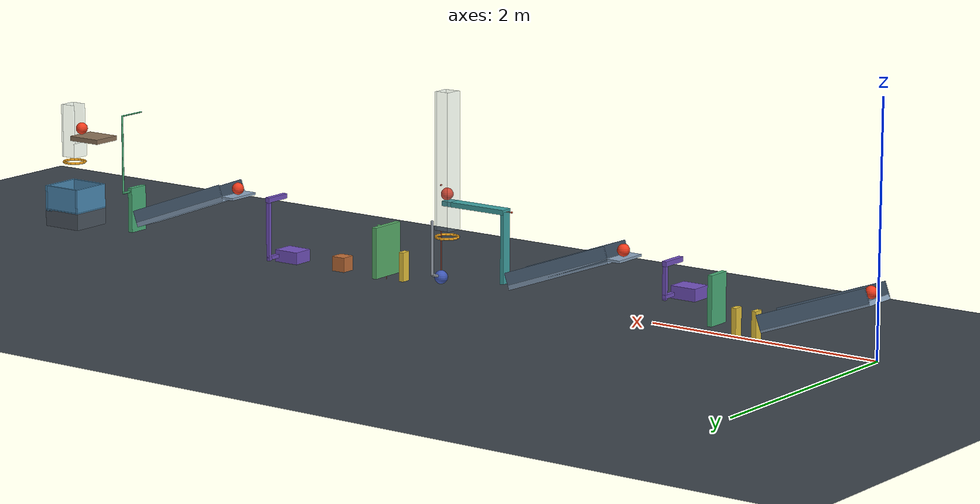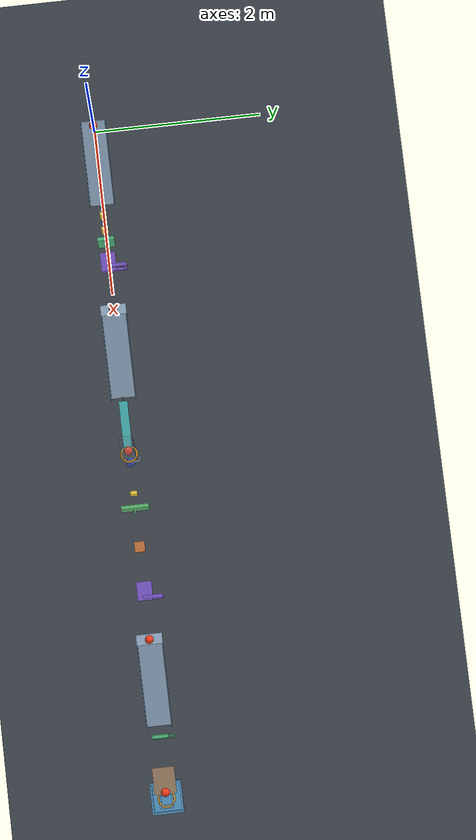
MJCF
<mujoco model="passive_chain_reaction_revised">
  <compiler angle="degree" autolimits="true"/>
  <option timestep="0.002" gravity="0 0 -9.81" integrator="implicitfast" solver="Newton" iterations="100" cone="elliptic" o_solref="0.006 0.6901" o_solimp="0.95 0.99 0.001" o_friction="0.70 0.005 0.0001">
    <flag override="enable"/>
  </option>
  <size njmax="4000" nconmax="1000"/>
  <visual>
    <global azimuth="135" elevation="-25"/>
    <headlight ambient="0.35 0.35 0.35" diffuse="0.65 0.65 0.65" specular="0.2 0.2 0.2"/>
  </visual>
  <statistic center="4 0 0.55" extent="5"/>

  <!-- Unvalidated revision: cart1 now clears ramp2's release deck. -->
  <!-- Contact damping approximates restitution 0.05; MuJoCo has no direct restitution attribute. -->
  <!-- The start keyframe uses reference positions and zero generalized velocities. -->
  <!-- Auxiliary strike arms, passive spring assists, and ball-only guides are explicit. -->

  <worldbody>
    <light name="main_light" pos="3 -4 7" dir="0 0 -1" directional="true"/>
    <camera name="overview" pos="4 -8 5" xyaxes="1 0 0 0 0.49 0.872"/>
    <geom name="floor" type="plane" size="12 4 0.1" rgba="0.23 0.26 0.29 1"/>

    <site name="lever_spring_anchor" pos="3.344186 0 0.70" size="0.008" rgba="0.8 0.3 0.2 1"/>
    <site name="pendulum_spring_anchor" pos="4.039186 0 0.833830" size="0.008" rgba="0.8 0.3 0.2 1"/>
    <site name="door_spring_anchor" pos="4.594186 0 -0.28" size="0.008" rgba="0.8 0.3 0.2 1"/>

    <body name="ramp1" pos="0 0 0.492020">
      <geom name="ramp1_surface" type="box" pos="0.463006 0 -0.189804" quat="0.984807753 0 0.173648178 0" size="0.50 0.15 0.02" rgba="0.55 0.65 0.75 1"/>
      <geom name="ramp1_rail_left" type="box" pos="0.483527 0.145 -0.133422" quat="0.984807753 0 0.173648178 0" size="0.50 0.005 0.06" rgba="0.35 0.45 0.55 1"/>
      <geom name="ramp1_rail_right" type="box" pos="0.483527 -0.145 -0.133422" quat="0.984807753 0 0.173648178 0" size="0.50 0.005 0.06" rgba="0.35 0.45 0.55 1"/>
    </body>

    <body name="ball1" pos="0.064086 0 0.521904">
      <freejoint name="ball1_free"/>
      <geom name="ball1_sphere" type="sphere" size="0.05" mass="0.20" rgba="0.95 0.24 0.12 1"/>
    </body>

    <body name="domino1" pos="1.059693 0 0.12">
      <freejoint name="domino1_free"/>
      <geom name="domino1_box" type="box" size="0.02 0.04 0.12" mass="0.25" rgba="0.92 0.78 0.24 1"/>
    </body>

    <body name="domino2" pos="1.239693 0 0.12">
      <freejoint name="domino2_free"/>
      <geom name="domino2_box" type="box" size="0.02 0.04 0.12" mass="0.25" rgba="0.92 0.78 0.24 1"/>
    </body>

    <body name="flap1" pos="1.419693 0 0.08">
      <joint name="flap1_hinge" type="hinge" axis="0 1 0" range="0 65" damping="0.04" solreflimit="0.004 1"/>
      <geom name="flap1_panel" type="box" pos="0 0 0.20" size="0.02 0.10 0.20" mass="0.30" rgba="0.30 0.70 0.48 1"/>
    </body>

    <!-- Main cart clears the deck; the side-mounted push bar contacts ball2 above it. -->
    <body name="cart1" pos="1.669693 0 0.30">
      <joint name="cart1_slide" type="slide" axis="1 0 0" range="0 0.85" damping="0.20" solreflimit="0.004 1"/>
      <geom name="cart1_box" type="box" size="0.11 0.09 0.05" mass="0.50" rgba="0.45 0.32 0.75 1"/>
      <geom name="cart1_arm_root" type="box" pos="0.09 0.145 -0.015" size="0.015 0.07 0.015" mass="0" rgba="0.45 0.32 0.75 1"/>
      <geom name="cart1_side_mast" type="box" pos="0.09 0.20 0.09" size="0.015 0.015 0.132" mass="0" rgba="0.45 0.32 0.75 1"/>
      <geom name="cart1_push_bar" type="box" pos="0.09 0.10 0.242020" size="0.02 0.115 0.02" mass="0" rgba="0.45 0.32 0.75 1"/>
    </body>

    <body name="ramp2" pos="2.334493 0 0.492020">
      <geom name="ramp2_surface" type="box" pos="0.463006 0 -0.189804" quat="0.984807753 0 0.173648178 0" size="0.50 0.15 0.02" rgba="0.55 0.65 0.75 1"/>
      <geom name="ramp2_rail_left" type="box" pos="0.483527 0.145 -0.133422" quat="0.984807753 0 0.173648178 0" size="0.50 0.005 0.06" rgba="0.35 0.45 0.55 1"/>
      <geom name="ramp2_rail_right" type="box" pos="0.483527 -0.145 -0.133422" quat="0.984807753 0 0.173648178 0" size="0.50 0.005 0.06" rgba="0.35 0.45 0.55 1"/>
      <geom name="ramp2_release_deck" type="box" pos="-0.06 0 -0.01" size="0.06 0.15 0.01" rgba="0.55 0.65 0.75 1"/>
    </body>

    <body name="ball2" pos="2.279493 0 0.542020">
      <freejoint name="ball2_free"/>
      <geom name="ball2_sphere" type="sphere" size="0.05" mass="0.20" rgba="0.95 0.24 0.12 1"/>
    </body>

    <!-- Hanging tab transfers the low ramp impact to the elevated launching lever. -->
    <body name="lever1" pos="3.694186 0 0.70">
      <joint name="lever1_hinge" type="hinge" axis="0 -1 0" range="0 45" damping="0.04" solreflimit="0.004 1"/>
      <geom name="lever1_panel" type="box" size="0.30 0.05 0.02" mass="0.48" rgba="0.25 0.65 0.65 1"/>
      <geom name="lever1_strike_tab" type="box" pos="-0.285 0 -0.29" size="0.015 0.045 0.29" mass="0.02" rgba="0.25 0.65 0.65 1"/>
      <site name="lever1_spring_attachment" pos="0.28 0 0" size="0.008" rgba="0.8 0.3 0.2 1"/>
    </body>

    <body name="ball3" pos="3.979186 0 0.77">
      <freejoint name="ball3_free"/>
      <geom name="ball3_sphere" type="sphere" size="0.05" mass="0.20" contype="2" conaffinity="1" rgba="0.95 0.24 0.12 1"/>
    </body>

    <!-- These idealized rails collide only with ball3, providing lever clearance. -->
    <body name="ball3_guide" pos="3.979186 0 1.04">
      <geom name="ball3_guide_xminus" type="box" pos="-0.061 0 0" size="0.008 0.075 0.56" contype="4" conaffinity="2" rgba="0.55 0.65 0.75 0.25"/>
      <geom name="ball3_guide_xplus" type="box" pos="0.061 0 0" size="0.008 0.075 0.56" contype="4" conaffinity="2" rgba="0.55 0.65 0.75 0.25"/>
      <geom name="ball3_guide_yminus" type="box" pos="0 -0.061 0" size="0.053 0.008 0.56" contype="4" conaffinity="2" rgba="0.55 0.65 0.75 0.25"/>
      <geom name="ball3_guide_yplus" type="box" pos="0 0.061 0" size="0.053 0.008 0.56" contype="4" conaffinity="2" rgba="0.55 0.65 0.75 0.25"/>
    </body>

    <body name="ring1" pos="3.979186 0 0.42">
      <geom name="ring1_segment01" type="capsule" fromto="0.091763 0 0 0.084778 0.035115 0" size="0.01" rgba="0.95 0.65 0.12 1"/>
      <geom name="ring1_segment02" type="capsule" fromto="0.084778 0.035115 0 0.064888 0.064888 0" size="0.01" rgba="0.95 0.65 0.12 1"/>
      <geom name="ring1_segment03" type="capsule" fromto="0.064888 0.064888 0 0.035115 0.084778 0" size="0.01" rgba="0.95 0.65 0.12 1"/>
      <geom name="ring1_segment04" type="capsule" fromto="0.035115 0.084778 0 0 0.091763 0" size="0.01" rgba="0.95 0.65 0.12 1"/>
      <geom name="ring1_segment05" type="capsule" fromto="0 0.091763 0 -0.035115 0.084778 0" size="0.01" rgba="0.95 0.65 0.12 1"/>
      <geom name="ring1_segment06" type="capsule" fromto="-0.035115 0.084778 0 -0.064888 0.064888 0" size="0.01" rgba="0.95 0.65 0.12 1"/>
      <geom name="ring1_segment07" type="capsule" fromto="-0.064888 0.064888 0 -0.084778 0.035115 0" size="0.01" rgba="0.95 0.65 0.12 1"/>
      <geom name="ring1_segment08" type="capsule" fromto="-0.084778 0.035115 0 -0.091763 0 0" size="0.01" rgba="0.95 0.65 0.12 1"/>
      <geom name="ring1_segment09" type="capsule" fromto="-0.091763 0 0 -0.084778 -0.035115 0" size="0.01" rgba="0.95 0.65 0.12 1"/>
      <geom name="ring1_segment10" type="capsule" fromto="-0.084778 -0.035115 0 -0.064888 -0.064888 0" size="0.01" rgba="0.95 0.65 0.12 1"/>
      <geom name="ring1_segment11" type="capsule" fromto="-0.064888 -0.064888 0 -0.035115 -0.084778 0" size="0.01" rgba="0.95 0.65 0.12 1"/>
      <geom name="ring1_segment12" type="capsule" fromto="-0.035115 -0.084778 0 0 -0.091763 0" size="0.01" rgba="0.95 0.65 0.12 1"/>
      <geom name="ring1_segment13" type="capsule" fromto="0 -0.091763 0 0.035115 -0.084778 0" size="0.01" rgba="0.95 0.65 0.12 1"/>
      <geom name="ring1_segment14" type="capsule" fromto="0.035115 -0.084778 0 0.064888 -0.064888 0" size="0.01" rgba="0.95 0.65 0.12 1"/>
      <geom name="ring1_segment15" type="capsule" fromto="0.064888 -0.064888 0 0.084778 -0.035115 0" size="0.01" rgba="0.95 0.65 0.12 1"/>
      <geom name="ring1_segment16" type="capsule" fromto="0.084778 -0.035115 0 0.091763 0 0" size="0.01" rgba="0.95 0.65 0.12 1"/>
    </body>

    <!-- Side-routed rigid rod clears the falling-ball line; pivot-to-bob length is 0.50 m. -->
    <body name="pendulum1" pos="4.039186 0 0.583830">
      <joint name="pendulum1_hinge" type="hinge" axis="0 -1 0" range="0 40" damping="0.04" solreflimit="0.004 1"/>
      <geom name="pendulum1_rod" type="capsule" fromto="0 0.12 -0.03 0 0.12 -0.46" size="0.012" mass="0.04" rgba="0.55 0.58 0.62 1"/>
      <geom name="pendulum1_elbow" type="capsule" fromto="0 0.12 -0.46 0 0 -0.50" size="0.012" mass="0.01" rgba="0.55 0.58 0.62 1"/>
      <geom name="pendulum1_bob" type="sphere" pos="0 0 -0.50" size="0.055" mass="0.30" rgba="0.25 0.35 0.72 1"/>
      <site name="pendulum1_spring_attachment" pos="0 0 -0.50" size="0.008" rgba="0.8 0.3 0.2 1"/>
    </body>

    <body name="domino3" pos="4.414186 0 0.12">
      <freejoint name="domino3_free"/>
      <geom name="domino3_box" type="box" size="0.02 0.04 0.12" mass="0.25" rgba="0.92 0.78 0.24 1"/>
    </body>

    <body name="door1" pos="4.594186 0 0.02">
      <joint name="door1_hinge" type="hinge" axis="0 1 0" range="0 70" damping="0.04" frictionloss="0.10" solreflimit="0.004 1"/>
      <geom name="door1_panel" type="box" pos="0 0 0.21" size="0.02 0.16 0.21" mass="0.45" rgba="0.35 0.70 0.42 1"/>
      <geom name="door1_strike_shoe" type="capsule" fromto="0 0 0.40 0.08 0 0.40" size="0.01" mass="0" rgba="0.35 0.70 0.42 1"/>
      <site name="door1_spring_attachment" pos="0 0 0.38" size="0.008" rgba="0.8 0.3 0.2 1"/>
    </body>

    <body name="block1" pos="5.044186 0 0.06">
      <freejoint name="block1_free"/>
      <geom name="block1_cube" type="box" size="0.06 0.06 0.06" mass="0.35" rgba="0.75 0.43 0.22 1"/>
    </body>

    <body name="cart2" pos="5.564186 0 0.055">
      <joint name="cart2_slide" type="slide" axis="1 0 0" range="0 0.85" damping="0.20" solreflimit="0.004 1"/>
      <geom name="cart2_box" type="box" size="0.11 0.09 0.05" mass="0.50" rgba="0.45 0.32 0.75 1"/>
      <geom name="cart2_arm_root" type="box" pos="0.09 0.145 0" size="0.015 0.07 0.015" mass="0" rgba="0.45 0.32 0.75 1"/>
      <geom name="cart2_side_mast" type="box" pos="0.09 0.20 0.22" size="0.015 0.015 0.24" mass="0" rgba="0.45 0.32 0.75 1"/>
      <geom name="cart2_push_bar" type="box" pos="0.09 0.10 0.487020" size="0.02 0.115 0.02" mass="0" rgba="0.45 0.32 0.75 1"/>
    </body>

    <body name="ramp3" pos="6.199186 0 0.492020">
      <geom name="ramp3_surface" type="box" pos="0.463006 0 -0.189804" quat="0.984807753 0 0.173648178 0" size="0.50 0.15 0.02" rgba="0.55 0.65 0.75 1"/>
      <geom name="ramp3_rail_left" type="box" pos="0.483527 0.145 -0.133422" quat="0.984807753 0 0.173648178 0" size="0.50 0.005 0.06" rgba="0.35 0.45 0.55 1"/>
      <geom name="ramp3_rail_right" type="box" pos="0.483527 -0.145 -0.133422" quat="0.984807753 0 0.173648178 0" size="0.50 0.005 0.06" rgba="0.35 0.45 0.55 1"/>
      <geom name="ramp3_release_deck" type="box" pos="-0.06 0 -0.01" size="0.06 0.15 0.01" rgba="0.55 0.65 0.75 1"/>
    </body>

    <body name="ball4" pos="6.144186 0 0.542020">
      <freejoint name="ball4_free"/>
      <geom name="ball4_sphere" type="sphere" size="0.05" mass="0.20" rgba="0.95 0.24 0.12 1"/>
    </body>

    <!-- Side extension transfers flap2's motion to the elevated shelf. -->
    <body name="flap2" pos="7.258879 0 0.04">
      <joint name="flap2_hinge" type="hinge" axis="0 1 0" range="0 60" damping="0.04" solreflimit="0.004 1"/>
      <geom name="flap2_panel" type="box" pos="0 0 0.19" size="0.02 0.09 0.19" mass="0.28" rgba="0.30 0.70 0.48 1"/>
      <geom name="flap2_arm_root" type="capsule" fromto="0 0 0.35 0 0.17 0.35" size="0.008" mass="0" rgba="0.30 0.70 0.48 1"/>
      <geom name="flap2_side_arm" type="capsule" fromto="0 0.17 0.35 0 0.17 1.01" size="0.008" mass="0" rgba="0.30 0.70 0.48 1"/>
      <geom name="flap2_shelf_striker" type="capsule" fromto="0 -0.07 1.01 0 0.17 1.01" size="0.006" mass="0" rgba="0.30 0.70 0.48 1"/>
    </body>

    <body name="shelf1" pos="7.738879 0 0.78">
      <geom name="shelf1_top" type="box" size="0.15 0.125 0.02" rgba="0.55 0.45 0.35 1"/>
    </body>

    <body name="ball5" pos="7.868879 0 0.85">
      <freejoint name="ball5_free"/>
      <geom name="ball5_sphere" type="sphere" size="0.05" mass="0.20" contype="8" conaffinity="1" rgba="0.95 0.24 0.12 1"/>
    </body>

    <!-- Open-sided receiving guide ends above ring2. -->
    <body name="ball5_guide" pos="7.958879 0 0">
      <geom name="ball5_guide_right" type="box" pos="0.067 0 0.825" size="0.008 0.075 0.225" contype="16" conaffinity="8" rgba="0.55 0.65 0.75 0.25"/>
      <geom name="ball5_guide_left" type="box" pos="-0.067 0 0.66" size="0.008 0.075 0.06" contype="16" conaffinity="8" rgba="0.55 0.65 0.75 0.25"/>
      <geom name="ball5_guide_front" type="box" pos="0 -0.067 0.825" size="0.059 0.008 0.225" contype="16" conaffinity="8" rgba="0.55 0.65 0.75 0.25"/>
      <geom name="ball5_guide_back" type="box" pos="0 0.067 0.825" size="0.059 0.008 0.225" contype="16" conaffinity="8" rgba="0.55 0.65 0.75 0.25"/>
    </body>

    <body name="ring2" pos="7.958879 0 0.55">
      <geom name="ring2_segment01" type="capsule" fromto="0.091763 0 0 0.084778 0.035115 0" size="0.01" rgba="0.95 0.65 0.12 1"/>
      <geom name="ring2_segment02" type="capsule" fromto="0.084778 0.035115 0 0.064888 0.064888 0" size="0.01" rgba="0.95 0.65 0.12 1"/>
      <geom name="ring2_segment03" type="capsule" fromto="0.064888 0.064888 0 0.035115 0.084778 0" size="0.01" rgba="0.95 0.65 0.12 1"/>
      <geom name="ring2_segment04" type="capsule" fromto="0.035115 0.084778 0 0 0.091763 0" size="0.01" rgba="0.95 0.65 0.12 1"/>
      <geom name="ring2_segment05" type="capsule" fromto="0 0.091763 0 -0.035115 0.084778 0" size="0.01" rgba="0.95 0.65 0.12 1"/>
      <geom name="ring2_segment06" type="capsule" fromto="-0.035115 0.084778 0 -0.064888 0.064888 0" size="0.01" rgba="0.95 0.65 0.12 1"/>
      <geom name="ring2_segment07" type="capsule" fromto="-0.064888 0.064888 0 -0.084778 0.035115 0" size="0.01" rgba="0.95 0.65 0.12 1"/>
      <geom name="ring2_segment08" type="capsule" fromto="-0.084778 0.035115 0 -0.091763 0 0" size="0.01" rgba="0.95 0.65 0.12 1"/>
      <geom name="ring2_segment09" type="capsule" fromto="-0.091763 0 0 -0.084778 -0.035115 0" size="0.01" rgba="0.95 0.65 0.12 1"/>
      <geom name="ring2_segment10" type="capsule" fromto="-0.084778 -0.035115 0 -0.064888 -0.064888 0" size="0.01" rgba="0.95 0.65 0.12 1"/>
      <geom name="ring2_segment11" type="capsule" fromto="-0.064888 -0.064888 0 -0.035115 -0.084778 0" size="0.01" rgba="0.95 0.65 0.12 1"/>
      <geom name="ring2_segment12" type="capsule" fromto="-0.035115 -0.084778 0 0 -0.091763 0" size="0.01" rgba="0.95 0.65 0.12 1"/>
      <geom name="ring2_segment13" type="capsule" fromto="0 -0.091763 0 0.035115 -0.084778 0" size="0.01" rgba="0.95 0.65 0.12 1"/>
      <geom name="ring2_segment14" type="capsule" fromto="0.035115 -0.084778 0 0.064888 -0.064888 0" size="0.01" rgba="0.95 0.65 0.12 1"/>
      <geom name="ring2_segment15" type="capsule" fromto="0.064888 -0.064888 0 0.084778 -0.035115 0" size="0.01" rgba="0.95 0.65 0.12 1"/>
      <geom name="ring2_segment16" type="capsule" fromto="0.084778 -0.035115 0 0.091763 0 0" size="0.01" rgba="0.95 0.65 0.12 1"/>
    </body>

    <body name="bin1" pos="7.958879 0 0.15">
      <geom name="bin1_pedestal" type="box" pos="0 0 -0.08" size="0.18 0.18 0.07" rgba="0.30 0.34 0.38 1"/>
      <geom name="bin1_bottom" type="box" pos="0 0 -0.01" size="0.18 0.18 0.01" rgba="0.30 0.55 0.72 1"/>
      <geom name="bin1_wall_xminus" type="box" pos="-0.17 0 0.10" size="0.01 0.18 0.10" rgba="0.30 0.55 0.72 1"/>
      <geom name="bin1_wall_xplus" type="box" pos="0.17 0 0.10" size="0.01 0.18 0.10" rgba="0.30 0.55 0.72 1"/>
      <geom name="bin1_wall_yminus" type="box" pos="0 -0.17 0.10" size="0.16 0.01 0.10" rgba="0.30 0.55 0.72 1"/>
      <geom name="bin1_wall_yplus" type="box" pos="0 0.17 0.10" size="0.16 0.01 0.10" rgba="0.30 0.55 0.72 1"/>
    </body>
  </worldbody>

  <tendon>
    <spatial name="lever1_assist" stiffness="50" damping="0.02" springlength="0.25" width="0.003" rgba="0.8 0.3 0.2 0.7">
      <site site="lever_spring_anchor"/>
      <site site="lever1_spring_attachment"/>
    </spatial>
    <spatial name="pendulum1_assist" stiffness="40" damping="0.02" springlength="0.25" width="0.003" rgba="0.8 0.3 0.2 0.7">
      <site site="pendulum_spring_anchor"/>
      <site site="pendulum1_spring_attachment"/>
    </spatial>
    <spatial name="door1_assist" stiffness="220" damping="0.02" springlength="0.20" width="0.003" rgba="0.8 0.3 0.2 0.7">
      <site site="door_spring_anchor"/>
      <site site="door1_spring_attachment"/>
    </spatial>
  </tendon>

  <keyframe>
    <key name="start"/>
  </keyframe>
</mujoco>
